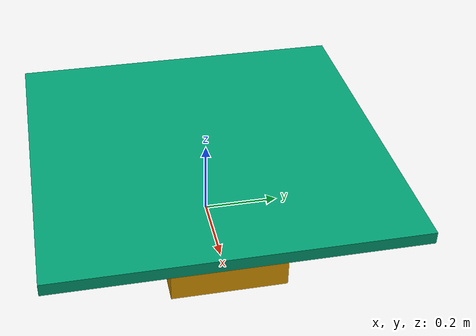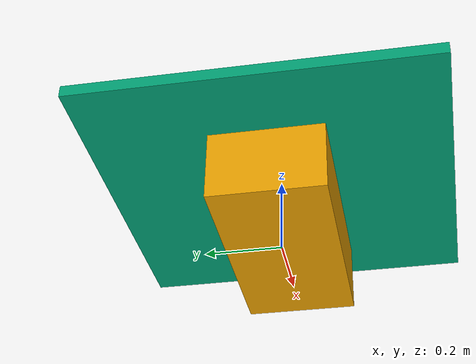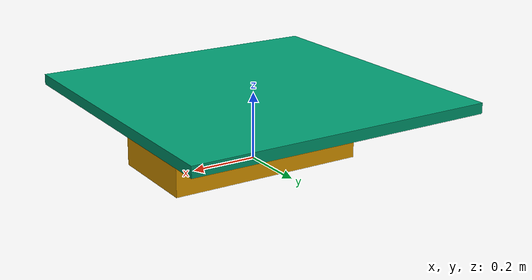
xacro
<?xml version="1.0" ?>
<robot name="hydra_positioner" xmlns:xacro="http://www.ros.org/wiki/xacro">
  <xacro:arg name="prefix" default=""/>
  <xacro:include filename="$(find hydra_description)/urdf/positioner_macro.xacro"/>
  <xacro:positioner_macro prefix="$(arg prefix)"/>

  <!-- 'flange' frame: default pose reference frame -->
  <link name="world" />
  <joint name="world-$(arg prefix)hydra_positioner" type="fixed">
    <origin xyz="0 0 0" rpy="0 0 0"/>
    <axis xyz="0 0 1"/>
    <parent link="world"/>
    <child link="$(arg prefix)rotary_table_base"/>
  </joint>
</robot>

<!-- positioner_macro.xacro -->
<robot xmlns:xacro="http://www.ros.org/wiki/xacro">
  <xacro:macro name="positioner_macro" params="prefix">

    <!-- link list -->
    <link name="${prefix}rotary_table_base">
        <visual>
        <geometry>
          <mesh filename="package://hydra_description/meshes/visual/rotary_table.dae"/>
        </geometry>
        <origin rpy="0.0 0.0 0.0" xyz="0 0 0"/>
      </visual>
      <collision>
        <geometry>
          <mesh filename="package://hydra_description/meshes/collision/rotary_table_collision.stl"/>
        </geometry>
        <origin rpy="0.0 0.0 0.0" xyz="0 0 0"/>
      </collision>
    </link>
    <link name="${prefix}rotary_table_top"/>

    <link name="${prefix}positioner_base">
        <visual>
        <geometry>
          <mesh filename="package://hydra_description/meshes/visual/hydra_positioner.dae"/>
        </geometry>
        <origin rpy="0.0 0.0 0.0" xyz="0 0 0"/>
      </visual>
      <collision>
        <geometry>
          <mesh filename="package://hydra_description/meshes/collision/hydra_positioner_collision.stl"/>
        </geometry>
        <origin rpy="0.0 0.0 0.0" xyz="0 0 0"/>
      </collision>
    </link>
    <link name="${prefix}positioner"/>
    <link name="${prefix}positioner_static"/>

    <!-- joint list -->
    <joint name="{prefix}rotary_table_top_base" type="fixed">
      <parent link="${prefix}rotary_table_base"/>
      <child link="${prefix}rotary_table_top"/>
      <origin rpy="0.0 0.0 0.0" xyz="0 0 0.183984"/>
    </joint>

    <joint name="${prefix}rotary_table_positioner" type="continuous">
      <origin rpy="0.0 0.0 0.0" xyz="0 0 0"/>
      <axis xyz="0 0 1"/>
      <parent link="${prefix}rotary_table_top"/>
      <child link="${prefix}positioner_base"/>
    </joint>

    <joint name="${prefix}positioner_joint" type="fixed">
      <origin rpy="0.0 0.0 0.0" xyz="0 0 0.03175"/>
      <axis xyz="0 0 1"/>
      <parent link="${prefix}positioner_base"/>
      <child link="${prefix}positioner"/>
    </joint>

    <joint name="${prefix}positioner_static_joint" type="fixed">
      <origin rpy="0.0 0.0 0.0" xyz="0 0 0.03175"/>
      <parent link="${prefix}rotary_table_top"/>
      <child link="${prefix}positioner_static"/>
    </joint>

  </xacro:macro>
</robot>
